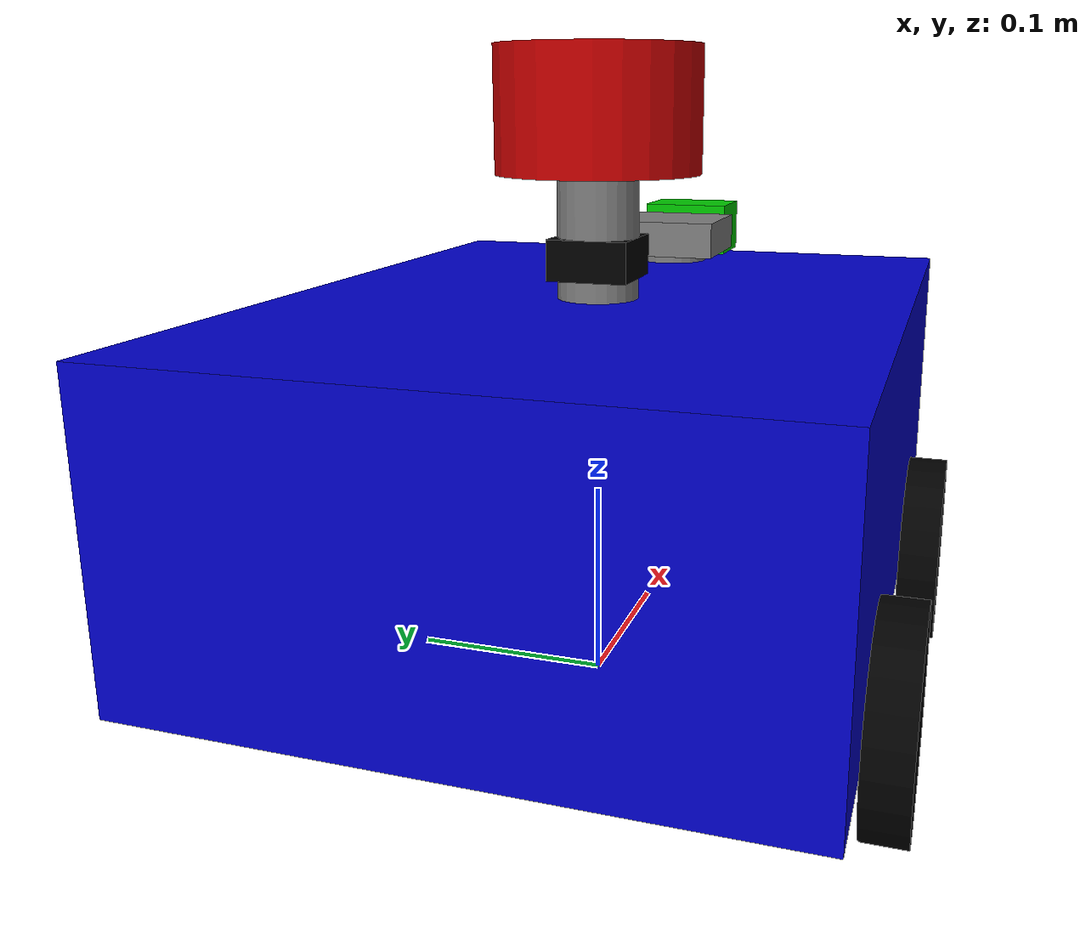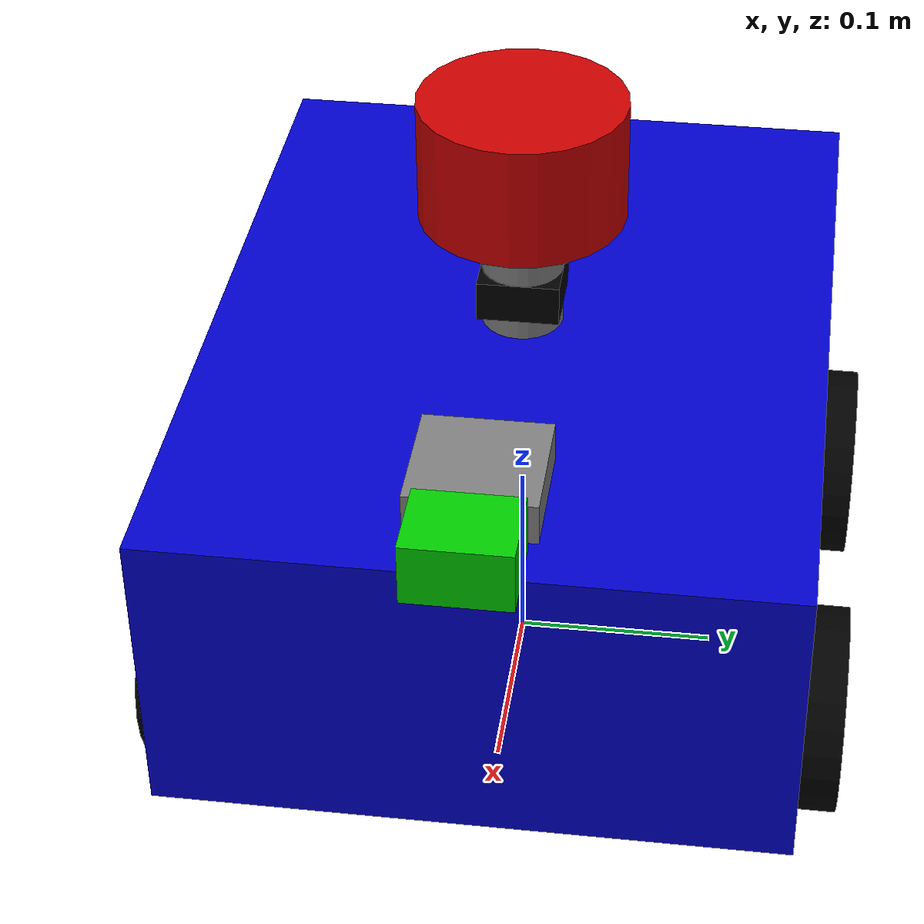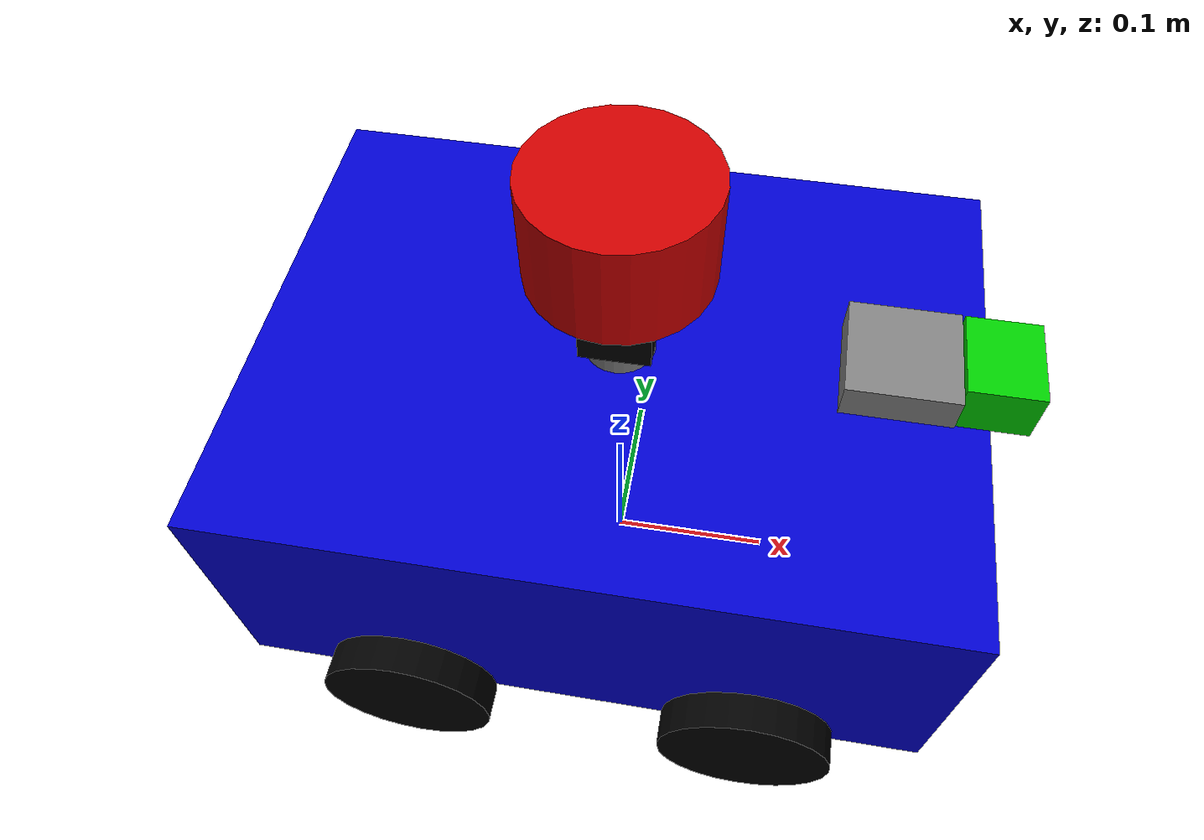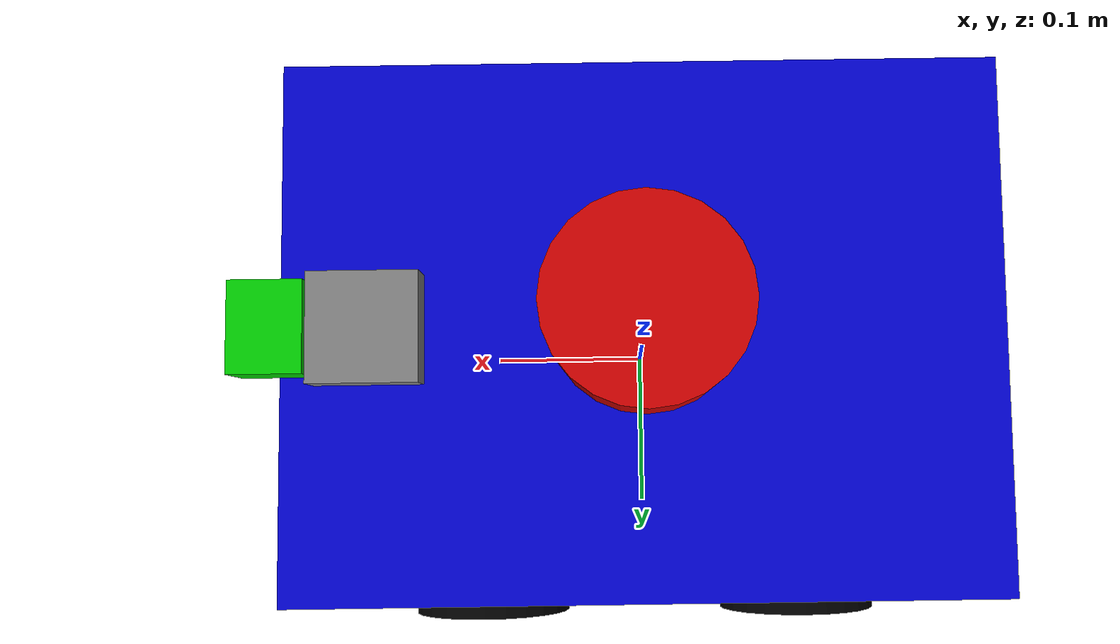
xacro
<?xml version="1.0"?>
<robot name="four_wheel_bot" xmlns:xacro="http://www.ros.org/wiki/xacro">

  <!-- Define material colors -->
  <material name="blue">
    <color rgba="0 0 0.8 1"/>
  </material>
  <material name="red">
    <color rgba="0.8 0 0 1"/>
  </material>
  <material name="green">
    <color rgba="0 0.8 0 1"/>
  </material>
  <material name="gray">
    <color rgba="0.5 0.5 0.5 1"/>
  </material>
  <material name="black">
    <color rgba="0 0 0 1"/>
  </material>

  <!-- Define robot parameters -->
  <xacro:property name="base_length" value="0.4"/> <!-- Chassis length -->
  <xacro:property name="base_width" value="0.3"/> <!-- Chassis width -->
  <xacro:property name="base_height" value="0.15"/> <!-- Chassis height -->
  <xacro:property name="wheel_radius" value="0.05"/> <!-- Wheel radius -->
  <xacro:property name="wheel_width" value="0.02"/> <!-- Wheel width -->
  <xacro:property name="wheel_gap" value="0.01"/> <!-- Gap between wheels and chassis -->
  <xacro:property name="lidar_radius" value="0.05"/> <!-- LIDAR radius -->
  <xacro:property name="lidar_height" value="0.06"/> <!-- LIDAR height, reduced from 0.1m -->
  <xacro:property name="lidar_holder_height" value="0.06"/> <!-- LIDAR holder height -->
  <xacro:property name="camera_width" value="0.05"/> <!-- Camera width -->
  <xacro:property name="camera_height" value="0.03"/> <!-- Camera height -->
  <xacro:property name="camera_depth" value="0.04"/> <!-- Camera depth -->
  <xacro:property name="camera_holder_height" value="0.015"/> <!-- Camera holder height, matches base_height + 0.03 -->

  <!-- Base Footprint Link -->
  <link name="base_footprint">
  </link>

  <!-- Base Link (Chassis) -->
  <link name="base_link">
    <visual>
      <geometry>
        <box size="${base_length} ${base_width} ${base_height}"/>
      </geometry>
      <material name="blue"/>
      <origin xyz="0 0 ${base_height/2}" rpy="0 0 0"/>
    </visual>
    <collision>
      <geometry>
        <box size="${base_length} ${base_width} ${base_height}"/>
      </geometry>
      <origin xyz="0 0 ${base_height/2}" rpy="0 0 0"/>
    </collision>
    <inertial>
      <origin xyz="0 0 0.11" rpy="0 0 0"/>
      <mass value="3.5"/>
      <inertia ixx="0.0328" ixy="0.0"  ixz="0.0" iyy="0.0532" iyz="0.0" izz="0.0729"/>
    </inertial>
  </link>

  <!-- Joint between base_footprint and base_link -->
  <joint name="base_footprint_joint" type="fixed">
    <parent link="base_footprint"/>
    <child link="base_link"/>
    <origin xyz="0 0 ${wheel_radius}" rpy="0 0 0"/>
  </joint>

  <!-- Wheel Macro -->
  <xacro:macro name="wheel" params="name side x_offset y_offset">
  <link name="${name}_wheel">
    <visual>
      <geometry>
        <cylinder radius="${wheel_radius}" length="${wheel_width}"/>
      </geometry>
      <material name="black"/>
      <origin xyz="0 0 0" rpy="${pi/2} 0 0"/>
    </visual>
    <collision>
      <geometry>
        <cylinder radius="${wheel_radius}" length="${wheel_width}"/>
      </geometry>
      <origin xyz="0 0 0" rpy="${pi/2} 0 0"/>
    </collision>
    <inertial>
      <mass value="0.053"/>
      <inertia ixx="0.00003489" ixy="0" ixz="0" iyy="0.00003489" iyz="0" izz="0.00006625"/>
    </inertial>
  </link>
  <joint name="${name}_wheel_joint" type="continuous">
    <parent link="base_link"/>
    <child link="${name}_wheel"/>
    <origin xyz="${x_offset} ${y_offset * (base_width/2 + wheel_gap)} 0" rpy="0 0 0"/>
    <limit effort="0.5" velocity="30.0" />
    <dynamics damping="0.05" friction="0.01" />
    <axis xyz="0 1 0"/>
  </joint>
</xacro:macro>

  <!-- Instantiate Wheels -->
  <xacro:wheel name="fl" side="left" x_offset="${base_length/4}" y_offset="1"/>
  <xacro:wheel name="fr" side="right" x_offset="${base_length/4}" y_offset="-1"/>
  <xacro:wheel name="rl" side="left" x_offset="-${base_length/4}" y_offset="1"/>
  <xacro:wheel name="rr" side="right" x_offset="-${base_length/4}" y_offset="-1"/>

  <!--LIDAR Holder-->
  <link name="lidar_holder">
    <visual>
      <geometry>
        <cylinder radius="0.02" length="${lidar_holder_height}"/>
      </geometry>
      <material name="gray"/>
      <origin xyz="0 0 ${lidar_holder_height/2}" rpy="0 0 0"/>
    </visual>
    <collision>
      <geometry>
        <cylinder radius="0.02" length="${lidar_holder_height}"/>
      </geometry>
      <origin xyz="0 0 ${lidar_holder_height/2}" rpy="0 0 0"/>
    </collision>
    <inertial>
      <mass value="0.2"/>
      <inertia ixx="0.001" ixy="0" ixz="0" iyy="0.001" iyz="0" izz="0.001"/>
    </inertial>
  </link>
  <joint name="lidar_holder_joint" type="fixed">
    <parent link="base_link"/>
    <child link="lidar_holder"/>
    <origin xyz="0 0 ${base_height}" rpy="0 0 0"/>
  </joint>

  <!-- LIDAR -->
  <link name="lidar_link">
    <visual>
      <geometry>
        <cylinder radius="${lidar_radius}" length="${lidar_height}"/>
      </geometry>
      <material name="red"/>
      <origin xyz="0 0 ${lidar_height/2}" rpy="0 0 0"/>
    </visual>
    <collision>
      <geometry>
        <cylinder radius="${lidar_radius}" length="${lidar_height}"/>
      </geometry>
      <origin xyz="0 0 ${lidar_height/2}" rpy="0 0 0"/>
    </collision>
    <inertial>
      <mass value="0.3"/>
      <inertia ixx="0.0002775" ixy="0.0" ixz="0.0" iyy="0.0002775" iyz="0.0" izz="0.000375"/>/>
    </inertial>
  </link>
  <joint name="lidar_joint" type="fixed">
    <parent link="lidar_holder"/>
    <child link="lidar_link"/>
    <origin xyz="0 0 ${lidar_holder_height}" rpy="0 0 0"/>
  </joint>

  <!-- Camera Holder -->
  <link name="camera_holder">
    <visual>
      <geometry>
        <cylinder radius="0.02" length="${camera_holder_height}"/>
      </geometry>
      <material name="gray"/>
      <origin xyz="0 0 ${camera_holder_height/2}" rpy="0 0 0"/>
    </visual>
    <collision>
      <geometry>
        <cylinder radius="0.02" length="${camera_holder_height}"/>
      </geometry>
      <origin xyz="0 0 ${camera_holder_height/2}" rpy="0 0 0"/>
    </collision>
    <inertial>
      <mass value="0.2"/>
      <inertia ixx="0.001" ixy="0" ixz="0" iyy="0.001" iyz="0" izz="0.001"/>
    </inertial>
  </link>
  <joint name="camera_holder_joint" type="fixed">
    <parent link="base_link"/>
    <child link="camera_holder"/>
    <origin xyz="${base_length/2 - 0.05} 0 ${base_height}" rpy="0 0 0"/>
  </joint>

  <!-- Camera Frame -->
  <link name="camera_frame">
    <visual>
      <geometry>
        <box size="0.06 0.06 0.02"/>
      </geometry>
      <material name="gray"/>
      <origin xyz="0 0 0" rpy="0 0 0"/>
    </visual>
    <collision>
      <geometry>
        <box size="0.06 0.06 0.02"/>
      </geometry>
      <origin xyz="0 0 0" rpy="0 0 0"/>
    </collision>
    <inertial>
      <mass value="0.1"/>
      <inertia ixx="0.0005" ixy="0" ixz="0" iyy="0.0005" iyz="0" izz="0.0005"/>
    </inertial>
  </link>
  <joint name="camera_frame_joint" type="fixed">
    <parent link="camera_holder"/>
    <child link="camera_frame"/>
    <origin xyz="0 0 ${camera_holder_height}" rpy="0 0 0"/>
  </joint>

  <!-- Camera -->
  <link name="camera_link">
    <visual>
      <geometry>
        <box size="${camera_depth} ${camera_width} ${camera_height}"/>
      </geometry>
      <material name="green"/>
      <origin xyz="${camera_depth/2} 0 0" rpy="0 0 0"/>
    </visual>
    <collision>
      <geometry>
        <box size="${camera_depth} ${camera_width} ${camera_height}"/>
      </geometry>
      <origin xyz="${camera_depth/2} 0 0" rpy="0 0 0"/>
    </collision>
    <inertial>
      <mass value="0.2"/>
      <inertia ixx="0.001" ixy="0" ixz="0" iyy="0.001" iyz="0" izz="0.001"/>
    </inertial>
  </link>
  <joint name="camera_joint" type="fixed">
    <parent link="camera_frame"/>
    <child link="camera_link"/>
    <origin xyz="0.03 0 0" rpy="0 0 0"/>
  </joint>

  <!-- IMU -->
  <link name="imu_link">
    <visual>
      <geometry>
        <box size="0.04 0.04 0.02"/>
      </geometry>
      <material name="black"/>
      <origin xyz="0 0 0" rpy="0 0 0"/>
    </visual>
    <collision>
      <geometry>
        <box size="0.04 0.04 0.02"/>
      </geometry>
      <origin xyz="0 0 0" rpy="0 0 0"/>
    </collision>
    <inertial>
      <mass value="0.1"/>
      <inertia ixx="0.0005" ixy="0" ixz="0" iyy="0.0005" iyz="0" izz="0.0005"/>
    </inertial>
  </link>
  <joint name="imu_joint" type="fixed">
    <parent link="base_link"/>
    <child link="imu_link"/>
    <origin xyz="0 0 ${base_height + 0.02}" rpy="0 0 0"/>
  </joint>

  <!-- Gazebo Plugins -->
 <!--Control ad gazebo control interface-->
   <ros2_control name="IgnitionSystem" type="system">
  <hardware>
    <plugin>gz_ros2_control/GazeboSimSystem</plugin>
  </hardware>
  <joint name="fl_wheel_joint">
    <command_interface name="velocity">
      <param name="min">-20</param> <!-- 1.0 m/s / 0.05 m = 20 rad/s -->
      <param name="max">20</param>
    </command_interface>
    <state_interface name="position"/>
    <state_interface name="velocity"/>
  </joint>
  <joint name="rr_wheel_joint">
    <command_interface name="velocity">
      <param name="min">-20</param>
      <param name="max">20</param>
    </command_interface>
    <state_interface name="position"/>
    <state_interface name="velocity"/>
  </joint>
  <joint name="fr_wheel_joint">
    <command_interface name="velocity">
      <param name="min">-20</param>
      <param name="max">20</param>
    </command_interface>
    <state_interface name="position"/>
    <state_interface name="velocity"/>
  </joint>
  <joint name="rl_wheel_joint">
    <command_interface name="velocity">
      <param name="min">-20</param>
      <param name="max">20</param>
    </command_interface>
    <state_interface name="position"/>
    <state_interface name="velocity"/>
  </joint>
</ros2_control>

  <gazebo>
    <plugin filename="gz_ros2_control-system" name="gz_ros2_control::GazeboSimROS2ControlPlugin">
      <parameters>$(find testbot)/config/4w_diff_drive_controller_velocity.yaml</parameters>
    </plugin>
  </gazebo>

 <gazebo reference='lidar_joint'>
    <preserveFixedJoint>true</preserveFixedJoint>
  </gazebo>

<gazebo reference="lidar_link">
  <sensor name="lidar" type="gpu_lidar">
    <ignition_frame_id>lidar_link</ignition_frame_id>
    <topic>/scan</topic>
    <always_on>true</always_on>
    <visualize>true</visualize>
    <update_rate>10</update_rate>
    <ray>
      <scan>
        <horizontal>
          <samples>360</samples>
          <resolution>1.0</resolution>
          <min_angle>-3.14</min_angle>
          <max_angle>3.14</max_angle>
        </horizontal>
      </scan>
      <range>
        <min>0.03</min>
        <max>10.0</max>
        <resolution>0.015</resolution>
      </range>
      <noise>
        <type>gaussian</type>
        <mean>0.0</mean>
        <stddev>0.01</stddev>
      </noise>
    </ray>
    </sensor>
  </gazebo>

  <!-- Camera Sensor Plugin -->
  <gazebo reference="camera_link">
    <sensor name="camera" type="camera">
      <camera>
        <horizontal_fov>1.047</horizontal_fov>
        <image>
          <width>320</width>
          <height>240</height>
          <format>R8G8B8</format>
        </image>
        <clip>
          <near>0.1</near>
          <far>20</far>
        </clip>

        <noise>
          <type>gaussian</type>
          <mean>0.0</mean>
          <stddev>0.007</stddev>
        </noise>

        <optical_frame_id>camera_frame</optical_frame_id>
        <camera_info_topic>camera_info</camera_info_topic>
      </camera>
      <always_on>1</always_on>
      <update_rate>10</update_rate>
      <visualize>true</visualize>
      <topic>/robot_cam</topic>
      <enable_metrics>true</enable_metrics>
    </sensor>
  </gazebo>

  <gazebo reference="imu_link">
    <sensor name="imu_sensor" type="imu">
      <ignition_frame_id>imu_link</ignition_frame_id>
      <plugin filename="ignition-gazebo-imu-system" name="ignition::gazebo::systems::Imu">
      </plugin>

      <topic>imu</topic>
      <always_on>true</always_on>
      <update_rate>100</update_rate>
      <visualize>true</visualize>
      <imu>
        <angular_velocity>
          <x>
            <noise type="gaussian">
              <mean>0.0</mean>
              <stddev>2e-4</stddev>
              <bias_mean>0.0000075</bias_mean>
              <bias_stddev>0.0000008</bias_stddev>
            </noise>
          </x>
          <y>
            <noise type="gaussian">
              <mean>0.0</mean>
              <stddev>2e-4</stddev>
              <bias_mean>0.0000075</bias_mean>
              <bias_stddev>0.0000008</bias_stddev>
            </noise>
          </y>
          <z>
            <noise type="gaussian">
              <mean>0.0</mean>
              <stddev>2e-4</stddev>
              <bias_mean>0.0000075</bias_mean>
              <bias_stddev>0.0000008</bias_stddev>
            </noise>
          </z>
        </angular_velocity>
        <linear_acceleration>
          <x>
            <noise type="gaussian">
              <mean>0.0</mean>
              <stddev>1.7e-2</stddev>
              <bias_mean>0.1</bias_mean>
              <bias_stddev>0.001</bias_stddev>
            </noise>
          </x>
          <y>
            <noise type="gaussian">
              <mean>0.0</mean>
              <stddev>1.7e-2</stddev>
              <bias_mean>0.1</bias_mean>
              <bias_stddev>0.001</bias_stddev>
            </noise>
          </y>
          <z>
            <noise type="gaussian">
              <mean>0.0</mean>
              <stddev>1.7e-2</stddev>
              <bias_mean>0.1</bias_mean>
              <bias_stddev>0.001</bias_stddev>
            </noise>
          </z>
        </linear_acceleration>
      </imu>
    </sensor>
  </gazebo>
  </robot>
